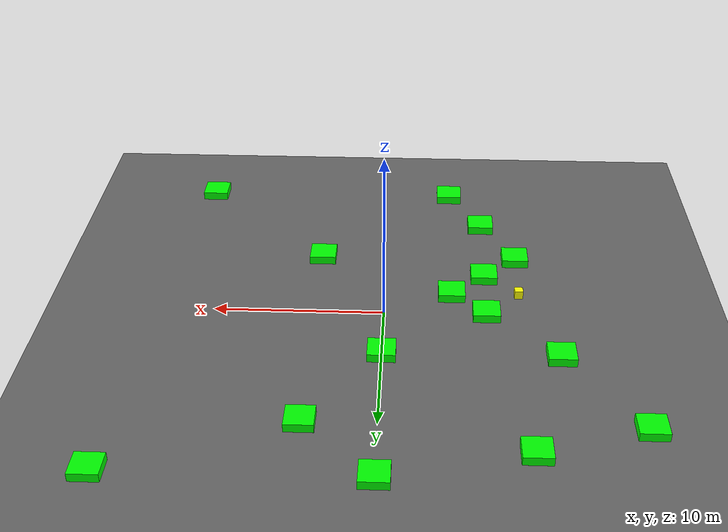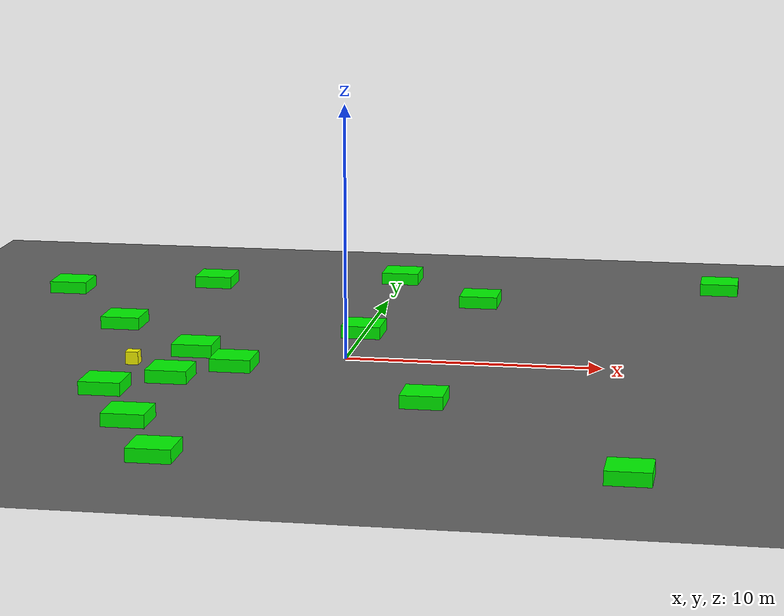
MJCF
<mujoco model="lvl5_deadend_obs15_d15_depth1_seed1">
    <compiler angle="degree" coordinate="local" inertiafromgeom="true"/>
    <option integrator="RK4" timestep="0.01"/>

    <asset>
        <texture builtin="gradient" height="100" rgb1="0.6 0.8 1" rgb2="0 0 0" type="skybox" width="100"/>
        <texture name="floor_texture" type="2d" builtin="checker" width="100" height="100" rgb1="0 0 0" rgb2="0.8 0.8 0.8"/>
        <material name="MatPlane" reflectance="0.5" shininess="1" specular="1" texrepeat="10 10" texture="floor_texture"/>
    </asset>

    <!-- Excluding the contact between the agent and the goal, and the agent and the floor -->
    <contact>
        <exclude body1="agent" body2="goal"/>
        <exclude body1 = "agent" body2 = "floor"/>
    </contact>

    <extension>
        <plugin plugin = "mujoco.pid">
            <instance name = "pid1">
                <config key="kp" value="2"/>
                <config key="ki" value="0"/>
                <config key="kd" value="55"/>
            </instance>
        </plugin>
    </extension>

    <worldbody>
        <light cutoff="100" diffuse="1 1 1" dir="-0 0 -1.3" directional="true" exponent="1" pos="0 0 1.3" specular=".1 .1 .1"/>
        <body name="floor" pos="0 0 0">
            <geom name="floor_geom" type="plane" size="20 20 0.1" material="MatPlane"/>
        </body>

                <body name="goal" pos="12.0000 -12.0000 0">
            <geom name="goal_geom" type="plane" size="0.5 0.5 1" pos="0 0 0" rgba="1 0 0 1"/>
        </body>

                <body name="agent" pos="-8.0000 -2.0000 0.250">
            <joint name="j1" type="slide" axis ="1 0 0 "/>
            <joint name="j2" type="slide" axis ="0 1 0 "/>
            <geom name="agent_geom" type="box" size="0.25 0.25 0.250" rgba="1 1 0 1"/>
        </body>

        <body name="obstacle1" pos="0.0000 14.0000 0.250">  <geom name="obstacle1_geom" type="box" size="0.8000 0.8000 0.250" rgba="0 1 0 1"/></body>
        <body name="obstacle2" pos="14.0000 14.0000 0.250">  <geom name="obstacle2_geom" type="box" size="0.8000 0.8000 0.250" rgba="0 1 0 1"/></body>
        <body name="obstacle3" pos="-8.0000 12.0000 0.250">  <geom name="obstacle3_geom" type="box" size="0.8000 0.8000 0.250" rgba="0 1 0 1"/></body>
        <body name="obstacle4" pos="-14.0000 10.0000 0.250">  <geom name="obstacle4_geom" type="box" size="0.8000 0.8000 0.250" rgba="0 1 0 1"/></body>
        <body name="obstacle5" pos="4.0000 10.0000 0.250">  <geom name="obstacle5_geom" type="box" size="0.8000 0.8000 0.250" rgba="0 1 0 1"/></body>
        <body name="obstacle6" pos="-10.0000 4.0000 0.250">  <geom name="obstacle6_geom" type="box" size="0.8000 0.8000 0.250" rgba="0 1 0 1"/></body>
        <body name="obstacle7" pos="0.0000 4.0000 0.250">  <geom name="obstacle7_geom" type="box" size="0.8000 0.8000 0.250" rgba="0 1 0 1"/></body>
        <body name="obstacle8" pos="-6.0000 0.0000 0.250">  <geom name="obstacle8_geom" type="box" size="0.8000 0.8000 0.250" rgba="0 1 0 1"/></body>
        <body name="obstacle9" pos="-4.0000 -2.0000 0.250">  <geom name="obstacle9_geom" type="box" size="0.8000 0.8000 0.250" rgba="0 1 0 1"/></body>
        <body name="obstacle10" pos="-6.0000 -4.0000 0.250">  <geom name="obstacle10_geom" type="box" size="0.8000 0.8000 0.250" rgba="0 1 0 1"/></body>
        <body name="obstacle11" pos="-8.0000 -6.0000 0.250">  <geom name="obstacle11_geom" type="box" size="0.8000 0.8000 0.250" rgba="0 1 0 1"/></body>
        <body name="obstacle12" pos="4.0000 -6.0000 0.250">  <geom name="obstacle12_geom" type="box" size="0.8000 0.8000 0.250" rgba="0 1 0 1"/></body>
        <body name="obstacle13" pos="-6.0000 -10.0000 0.250">  <geom name="obstacle13_geom" type="box" size="0.8000 0.8000 0.250" rgba="0 1 0 1"/></body>
        <body name="obstacle14" pos="-4.0000 -14.0000 0.250">  <geom name="obstacle14_geom" type="box" size="0.8000 0.8000 0.250" rgba="0 1 0 1"/></body>
        <body name="obstacle15" pos="12.0000 -14.0000 0.250">  <geom name="obstacle15_geom" type="box" size="0.8000 0.8000 0.250" rgba="0 1 0 1"/></body>

    </worldbody>

    <sensor>
<!-- SENSORS -->

        <distance name="dist1" geom1="agent_geom" geom2="obstacle1_geom" cutoff="1.5"/>
        <distance name="dist2" geom1="agent_geom" geom2="obstacle2_geom" cutoff="1.5"/>
        <distance name="dist3" geom1="agent_geom" geom2="obstacle3_geom" cutoff="1.5"/>
        <distance name="dist4" geom1="agent_geom" geom2="obstacle4_geom" cutoff="1.5"/>
        <distance name="dist5" geom1="agent_geom" geom2="obstacle5_geom" cutoff="1.5"/>
        <distance name="dist6" geom1="agent_geom" geom2="obstacle6_geom" cutoff="1.5"/>
        <distance name="dist7" geom1="agent_geom" geom2="obstacle7_geom" cutoff="1.5"/>
        <distance name="dist8" geom1="agent_geom" geom2="obstacle8_geom" cutoff="1.5"/>
        <distance name="dist9" geom1="agent_geom" geom2="obstacle9_geom" cutoff="1.5"/>
        <distance name="dist10" geom1="agent_geom" geom2="obstacle10_geom" cutoff="1.5"/>
        <distance name="dist11" geom1="agent_geom" geom2="obstacle11_geom" cutoff="1.5"/>
        <distance name="dist12" geom1="agent_geom" geom2="obstacle12_geom" cutoff="1.5"/>
        <distance name="dist13" geom1="agent_geom" geom2="obstacle13_geom" cutoff="1.5"/>
        <distance name="dist14" geom1="agent_geom" geom2="obstacle14_geom" cutoff="1.5"/>
        <distance name="dist15" geom1="agent_geom" geom2="obstacle15_geom" cutoff="1.5"/>
</sensor>

    <actuator>
        <plugin joint="j1" plugin="mujoco.pid" instance="pid1" />
        <plugin joint="j2" plugin="mujoco.pid" instance="pid1"/>
    </actuator>
</mujoco>
